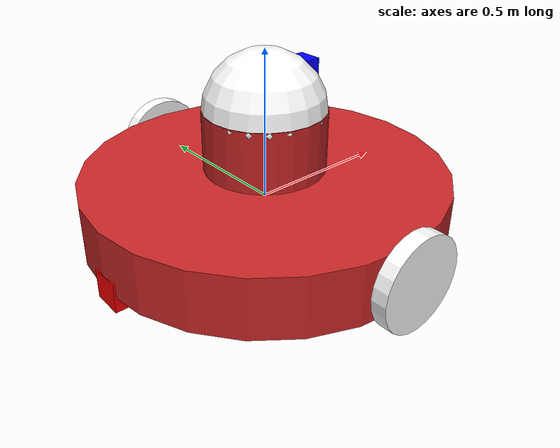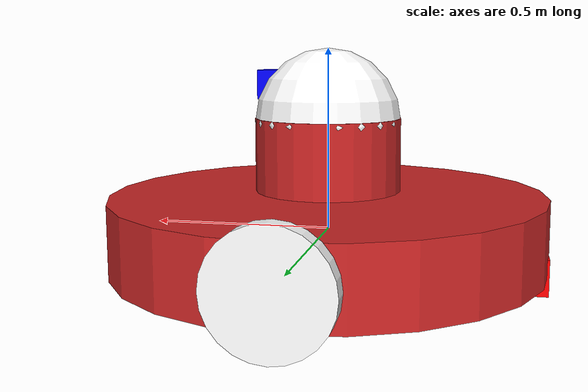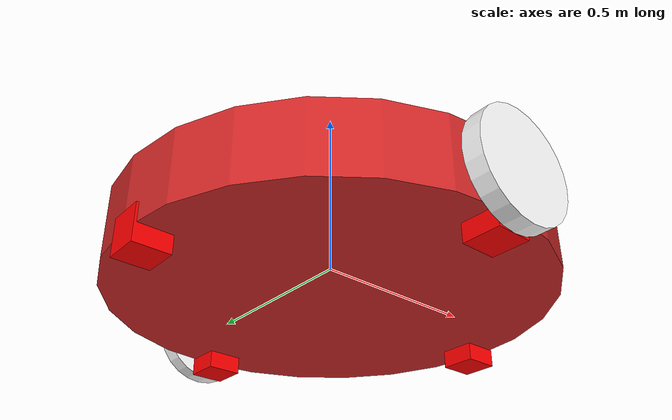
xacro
<?xml version="1.0"?>
 <robot name="auv" xmlns:xacro="http://www.ros.org/wiki/xacro">

<!-- Base link -->
  <link name="base_link">
   <visual>
<origin xyz="0 0 0" rpy="0 0 0" />
    <geometry>
     <cylinder length="0.2" radius="0.6"/>
    </geometry>
   </visual>
<!--Base collision,mass and inertia -->
 <collision>
   <origin xyz="0 0 0" rpy="0.22"/>
   <geometry>
     <cylinder length="0.3" radius="0.7" />
   </geometry>
  </collision>
  <inertial>
  <mass value="2"/>
  <inertia ixx="0.186" ixy="0.0" ixz="0.0" iyy="0.186" iyz="0.0" izz="0.36"/>
  </inertial>
  </link>

<!--Head base -->
 <link name="head_base">
 <visual>
  <origin xyz="0 0 0.21" rpy="0 0 0"/>
    <geometry>
      <cylinder length="0.2" radius="0.2"/>
    </geometry>
 </visual>
 </link>
 <joint name="base_to_head" type="fixed">
  <parent link="base_link"/>
  <child link="head_base"/>
 </joint>

<!-- Head -->
 <link name="head">
   <visual>
    <geometry>
     <sphere radius="0.2"/>
    </geometry>
   <material name="white">
   <color rgba="1 1 1 1"/>
   </material>
   </visual>
   </link>
<joint name="head_camera" type="fixed">
   <parent link="base_link"/>
   <child link="head"/>
   <origin xyz="0 0 0.3"/>
   </joint>

<!-- sphere base -->
<link name="sphere_base">
 <visual>
  <geometry>
   <box size="0.1 0.1 -0.1"/>
  </geometry>
  <material name="red">
  <color rgba="1 0 0 1"/>
  </material>
  </visual>
  </link>
<joint name="base_for_sphere" type="fixed">
   <parent link="base_link" />
   <child link="sphere_base"/>
   <origin xyz="-0.55 0 -0.1"/>
 </joint>

<!-- sphere to keep the base in water -->
<link name="sphere">
   <visual>
    <geometry>
     <sphere radius="0.03"/>
    </geometry>
   <material name="red">
   <color rgba="1 0 0 1"/>
   </material>
   </visual>

<!-- sphere mass Collision, Inertial -->
		<collision>
			<origin xyz="0 0 0" rpy=" 0 0 0"/>
			<geometry>
				 <sphere radius="0.03"/>
			</geometry>
		</collision>
		<inertial>
 	    	<mass value="0.001"/>
      	<inertia ixx="3e-06" ixy="0.0" ixz="0.0" iyy="3e-06" iyz="0.0" izz="5e-06"/>
    	</inertial>
	</link>
<joint name="base_sphere" type="fixed">
   <parent link="base_link"/>
   <child link="sphere"/>
   <origin xyz="-0.55 0 -0.05"/>
   </joint>

<!-- sphere2 base -->
<link name="sphere2_base">
 <visual>
  <geometry>
   <box size="0.1 0.1 -0.1"/>
  </geometry>
  <material name="red">
  <color rgba="1 0 0 1"/>
  </material>
  </visual>
  </link>
<joint name="base_for_sphere2" type="fixed">
   <parent link="base_link" />
   <child link="sphere2_base"/>
   <origin xyz="0.55 0 -0.1"/>
 </joint>

<!-- sphere to keep the base in water -->
<link name="sphere2">
   <visual>
    <geometry>
     <sphere radius="0.03"/>
    </geometry>
   <material name="white">
   <color rgba="1 1 1 1"/>
   </material>
   </visual>

<!-- sphere mass Collision, Inertial -->
		<collision>
			<origin xyz="0 0 0" rpy=" 0 0 0"/>
			<geometry>
				 <sphere radius="0.03"/>
			</geometry>
		</collision>
		<inertial>
 	    	<mass value="0.1"/>
      	<inertia ixx="3e-06" ixy="0.0" ixz="0.0" iyy="3e-06" iyz="0.0" izz="5e-06"/>
    	</inertial>
	</link>
<joint name="base_sphere2" type="fixed">
   <parent link="base_link"/>
   <child link="sphere2"/>
   <origin xyz="0.55 0 -0.05"/>
   </joint>
<!-- sphere3 base -->
<link name="sphere3_base">
 <visual>
  <geometry>
   <box size="0.1 0.1 -0.1"/>
  </geometry>
  <material name="red">
  <color rgba="1 0 0 1"/>
  </material>
  </visual>
  </link>
<joint name="base_for_sphere3" type="fixed">
   <parent link="base_link" />
   <child link="sphere3_base"/>
   <origin xyz="0 0.55 -0.1"/>
 </joint>

<!-- sphere to keep the base in water -->
<link name="sphere3">
   <visual>
    <geometry>
     <sphere radius="0.03"/>
    </geometry>
   <material name="white">
   <color rgba="1 1 1 1"/>
   </material>
   </visual>

<!-- sphere mass Collision, Inertial -->
		<collision>
			<origin xyz="0 0 0" rpy=" 0 0 0"/>
			<geometry>
				 <sphere radius="0.03"/>
			</geometry>
		</collision>
		<inertial>
 	    	<mass value="0.1"/>
      	<inertia ixx="3e-06" ixy="0.0" ixz="0.0" iyy="3e-06" iyz="0.0" izz="5e-06"/>
    	</inertial>
	</link>
<joint name="base_sphere3" type="fixed">
   <parent link="base_link"/>
   <child link="sphere3"/>
   <origin xyz="0 0.55 -0.05"/>
   </joint>

<!-- sphere4 base -->
<link name="sphere4_base">
 <visual>
  <geometry>
   <box size="0.1 0.1 -0.1"/>
  </geometry>
  <material name="red">
  <color rgba="1 0 0 1"/>
  </material>
  </visual>
  </link>
<joint name="base_for_sphere4" type="fixed">
   <parent link="base_link" />
   <child link="sphere4_base"/>
   <origin xyz="0 -0.55 -0.1"/>
 </joint>

<!-- sphere to keep the base in water -->
<link name="sphere4">
   <visual>
    <geometry>
     <sphere radius="0.03"/>
    </geometry>
   <material name="white">
   <color rgba="1 1 1 1"/>
   </material>
   </visual>

<!-- sphere mass Collision, Inertial -->
		<collision>
			<origin xyz="0 0 0" rpy=" 0 0 0"/>
			<geometry>
				 <sphere radius="0.03"/>
			</geometry>
		</collision>
		<inertial>
 	    	<mass value="0.1"/>
      	<inertia ixx="3e-06" ixy="0.0" ixz="0.0" iyy="3e-06" iyz="0.0" izz="5e-06"/>
    	</inertial>
	</link>
<joint name="base_sphere4" type="fixed">
   <parent link="base_link"/>
   <child link="sphere4"/>
   <origin xyz="0 -0.55 -0.05"/>
   </joint>

<!-- propele -->
	<link name="propele">
		<visual>
			<origin xyz="0 0 0" rpy=" 1.570795 0 0"/>
			<geometry>
				<cylinder length="0.05" radius="0.15"/>
			</geometry>
			<material name="white">
                        <color rgba="1 1 1 1"/>
                </material>
		</visual>
<!-- propeles mass Collision, Inertial -->
		<collision>
			<origin xyz="0 0 0" rpy=" 1.570795 0 0"/>
			<geometry>
				 <cylinder length="0.05" radius="0.15"/>
			</geometry>
		</collision>
		<inertial>
 	    	<mass value="0.001"/>
      	<inertia ixx="3e-06" ixy="0.0" ixz="0.0" iyy="3e-06" iyz="0.0" izz="5e-06"/>
    	</inertial>
	</link>
<!-- propeles Joint -->
	<joint name="joint_propele" type="continuous">
		<parent link="base_link"/>
		<child link="propele"/>
		<origin xyz="0 0.625 0" rpy="0 0 0"/>
		<axis xyz="0 1 0"/>
		<limit effort="100" velocity="100"/>
    	<joint_properties damping="0.0" friction="0.0"/>
	</joint>

<!-- propele 2 -->
<link name="propele2">
		<visual>
			<origin xyz="0 0 0" rpy=" 1.570795 0 0"/>
			<geometry>
				<cylinder length="0.05" radius="0.15"/>
			</geometry>
			<material name="white">
                        <color rgba="1 1 1 1"/>
                </material>
		</visual>
<!-- propeles mass Collision, Inertial -->
		<collision>
			<origin xyz="0 0 0" rpy=" 1.570795 0 0"/>
			<geometry>
				 <cylinder length="0.05" radius="0.15"/>
			</geometry>
		</collision>
		<inertial>
 	    	<mass value="0.001"/>
      	<inertia ixx="3e-06" ixy="0.0" ixz="0.0" iyy="3e-06" iyz="0.0" izz="5e-06"/>
    	</inertial>
	</link>
<!-- propeles Joint -->
	<joint name="joint_propele2" type="continuous">
		<parent link="base_link"/>
		<child link="propele2"/>
		<origin xyz="0 -0.625 0" rpy="0 0 0"/>
		<axis xyz="0 1 0"/>
		<limit effort="100" velocity="100"/>
    	<joint_properties damping="0.0" friction="0.0"/>
	</joint>

<!-- camera -->
 <link name="camera">
   <visual>
    <geometry>
      <box size="0.08 0.08 0.08"/>
    </geometry>
   <material name="blue">
   <color rgba="0 0 1 1"/>
   </material>
   </visual>
<!-- Camera collision mass and inertia-->
 <collision>
   <geometry>
     <box size="0.08 0.08 0.08" />
   </geometry>
  </collision>
  <inertial>
<mass value="0.1"/>
  <inertia ixx="0.0001" ixy="0.0" ixz="0.0" iyy="0.0001" iyz="0.0" izz="0.0001"/>
  </inertial>
  </link>
<joint name="camera_joint" type="fixed">
   <parent link="base_link"/>
   <child link="camera"/>
   <origin xyz="0.15 0 0.4"/>
 </joint>
<!-- Camera -->
<gazebo reference="camera">
    <material>Gazebo/Red</material>
    <sensor type="camera" name="camera1">
      <update_rate>30.0</update_rate>
      <camera name="head">
        <horizontal_fov>1.3962634</horizontal_fov>
        <image>
          <width>800</width>
          <height>800</height>
          <format>R8G8B8</format>
        </image>
        <clip>
          <near>0.02</near>
          <far>300</far>
        </clip>
      </camera>
      <plugin name="camera_controller" filename="libgazebo_ros_camera.so">
        <alwaysOn>true</alwaysOn>
        <updateRate>0.0</updateRate>
        <cameraName>auv/camera1</cameraName>
        <imageTopicName>image_raw</imageTopicName>
        <cameraInfoTopicName>camera_info</cameraInfoTopicName>
        <frameName>camera</frameName>
        <hackBaseline>0.07</hackBaseline>
        <distortionK1>0.0</distortionK1>
        <distortionK2>0.0</distortionK2>
        <distortionK3>0.0</distortionK3>
        <distortionT1>0.0</distortionT1>
        <distortionT2>0.0</distortionT2>
      </plugin>
    </sensor>
  </gazebo>

  <!-- Hokuyo Laser -->
  <link name="hokuyo_link">
    <visual>
      <origin xyz="0 0 0" rpy="0 0 0"/>
      <geometry>
        <box size="0.00001 0.00001 0.0001"/>
        <mesh filename="package://auv/meshes/hokuyo.dae"/>
      </geometry>
    <material name="blue">
    <color rgba="0 0 1 1"/>
    </material>
    </visual>

  <!-- Collision, Inertial Hokuyo Laser -->
    <collision>
      <origin xyz="0 0 0" rpy="0 0 0"/>
      <geometry>
        <box size="0.1 0.1 0.1"/>
      </geometry>
    </collision>
    <inertial>
   <mass value="1e-5" />
      <origin xyz="0 0 0" rpy="0 0 0"/>
      <inertia ixx="1e-6" ixy="0" ixz="0" iyy="1e-6" iyz="0" izz="1e-6" />
    </inertial>
    </link>

  <!-- Joint Hokuyo Laser -->
  <joint name="hokuyo_joint" type="fixed">
    <axis xyz="0 1 0" />
    <origin xyz="0.15 0 0.4" rpy="0 0 0"/>
    <parent link="base_link"/>
    <child link="hokuyo_link"/>
  </joint>

  <!-- hokuyo -->
  <gazebo reference="hokuyo_link">
   <material>Gazebo/Blue</material>
    <turnGravityOff>false</turnGravityOff>
    <sensor type="ray" name="head_hokuyo_sensor">
      <pose>0 0 0 0 0 0</pose>
      <visualize>true</visualize>
      <update_rate>40</update_rate>
      <ray>
        <scan>
          <horizontal>
            <samples>720</samples>
            <resolution>1</resolution>
            <min_angle>-1.570796</min_angle>
            <max_angle>1.570796</max_angle>
          </horizontal>
        </scan>
        <range>
          <min>0.10</min>
          <max>220.0</max>  <!--or 30 -->
          <resolution>0.01</resolution>
        </range>
        <noise>
          <type>gaussian</type>
          <mean>0.0</mean>
          <stddev>0.01</stddev>
        </noise>
      </ray>
      <plugin name="gazebo_ros_head_hokuyo_controller" filename="libgazebo_ros_laser.so">
        <topicName>/scan</topicName>
        <frameName>hokuyo_link</frameName>
      </plugin>
    </sensor>
  </gazebo>

<!-- object_contoller_plugin -->

 <gazebo>
    <plugin name="object_controller" filename="libgazebo_ros_planar_move.so">
      <commandTopic>cmd_vel</commandTopic>
      <odometryTopic>odom</odometryTopic>
      <odometryFrame>odom</odometryFrame>
      <odometryRate>20.0</odometryRate>
      <robotBaseFrame>base_link</robotBaseFrame>
    </plugin>
  </gazebo>

<!-- ros_control plugin -->
  <gazebo>
    <plugin name="gazebo_ros_control" filename="libgazebo_ros_control.so">
      <robotNamespace>/auv</robotNamespace>
      <robotSimType>gazebo_ros_control/DefaultRobotHWSim</robotSimType>
    </plugin>
  </gazebo>

 <!-- Differential drive controller  -->
  <gazebo>
    <plugin name="differential_drive_controller" filename="libgazebo_ros_diff_drive.so">

      <rosDebugLevel>Debug</rosDebugLevel>
      <publishWheelTF>false</publishWheelTF>
      <robotNamespace>auv</robotNamespace>
      <publishTf>1</publishTf>
      <publishWheelJointState>false</publishWheelJointState>
      <alwaysOn>true</alwaysOn>
      <updateRate>100.0</updateRate>
      <rightJoint>joint_propele</rightJoint>
      <leftJoint>joint_propele2</leftJoint>
      <wheelDiameter>0.2</wheelDiameter>
      <broadcastTF>1</broadcastTF>
      <wheelTorque>30</wheelTorque>
      <wheelAcceleration>1.8</wheelAcceleration>
      <commandTopic>cmd_vel</commandTopic>
      <odometryFrame>odom</odometryFrame>
      <odometryTopic>odom</odometryTopic>
      <robotBaseFrame>base_link</robotBaseFrame>

    </plugin>
  </gazebo>

<!-- buyancy plugin -->
   <gazebo>
        <plugin name="buoyancy_auv" filename="libBuoyancyPlugin.so">
          <fluid_density>1200</fluid_density>
	<link name="base_link">
    </link>
        </plugin>
    </gazebo>

<!-- Transmission -->
    <transmission name="transmission1">
      <type>transmission_interface/SimpleTransmission</type>
      <joint name="joint_propele">
        <hardwareInterface>EffortJointInterface</hardwareInterface>
      </joint>
      <actuator name="motor1">
        <hardwareInterface>EffortJointInterface</hardwareInterface>
        <mechanicalReduction>1</mechanicalReduction>
      </actuator>
    </transmission>

     <transmission name="transmission2">
      <type>transmission_interface/SimpleTransmission</type>
      <joint name="joint_propele2">
        <hardwareInterface>EffortJointInterface</hardwareInterface>
      </joint>
      <actuator name="motor2">
        <hardwareInterface>EffortJointInterface</hardwareInterface>
        <mechanicalReduction>1</mechanicalReduction>
      </actuator>
    </transmission>

<gazebo reference="base_link">
 <material>Gazebo/Red</material>
</gazebo>
<gazebo reference="head_base">
 <material>Gazebo/Red</material>
</gazebo>
<gazebo reference="head">
 <material>Gazebo/White</material>
</gazebo>
<gazebo reference="camera">
 <material>Gazebo/Blue</material>
</gazebo>
<gazebo reference="propele">
      <mu1 value="0.01"/>
      <mu2 value="0.01"/>
      <kp  value="10000000.0" />
      <kd  value="1.0" />
      <fdir1 value="1 0 0"/>
      <material>Gazebo/White</material>
      <turnGravityOff>false</turnGravityOff>
 </gazebo>

<gazebo reference="propele2">
      <mu1 value="0.01"/>
      <mu2 value="0.01"/>
      <kp  value="10000000.0" />
      <kd  value="1.0" />
      <fdir1 value="1 0 0"/>
      <material>Gazebo/White</material>
      <turnGravityOff>false</turnGravityOff>
 </gazebo>

<gazebo reference="sphere_base">
  <material>Gazebo/White</material>
</gazebo>
<gazebo reference="sphere2_base">
  <material>Gazebo/White</material>
</gazebo>
<gazebo reference="sphere">
  <material>Gazebo/Red</material>
</gazebo>
<gazebo reference="sphere2">
  <material>Gazebo/Red</material>
</gazebo>
<gazebo reference="sphere3_base">
  <material>Gazebo/White</material>
</gazebo>
<gazebo reference="sphere4_base">
  <material>Gazebo/White</material>
</gazebo>
<gazebo reference="sphere3">
  <material>Gazebo/Red</material>
</gazebo>
<gazebo reference="sphere4">
  <material>Gazebo/Red</material>
</gazebo>

</robot>
